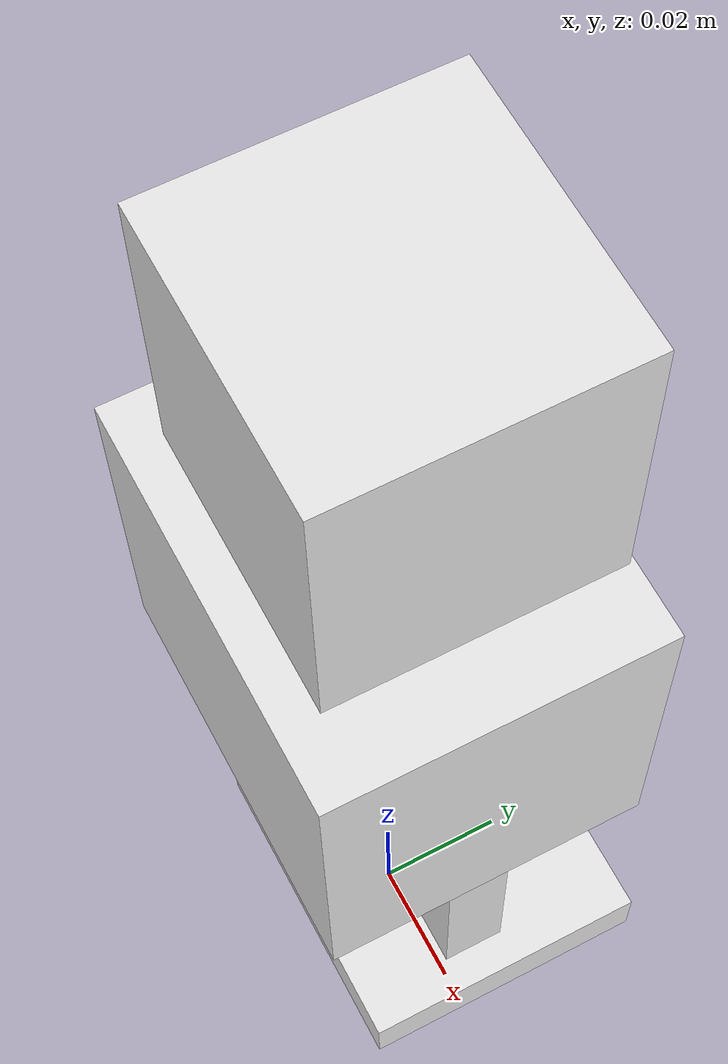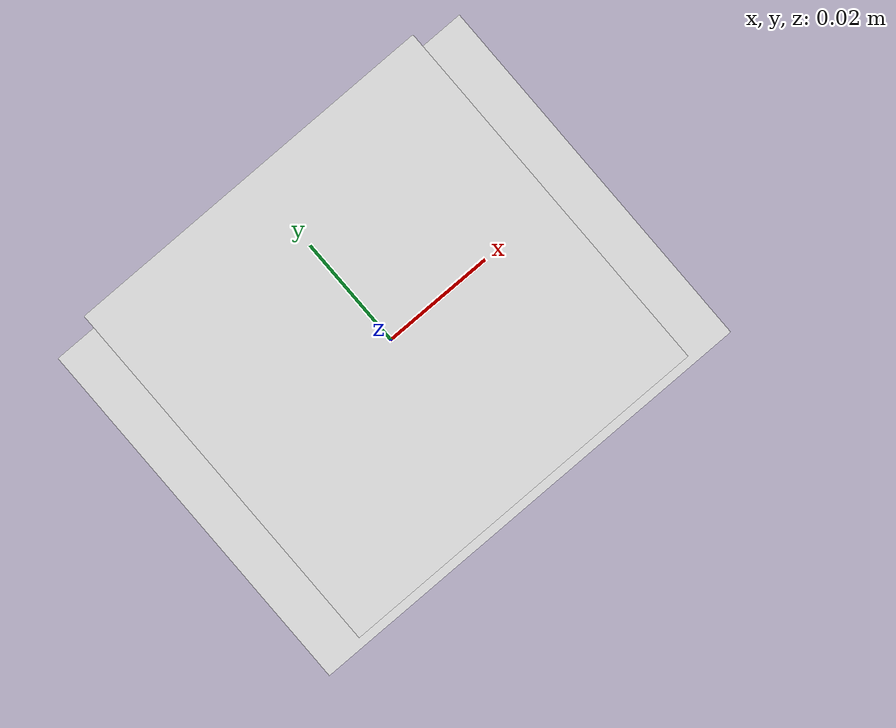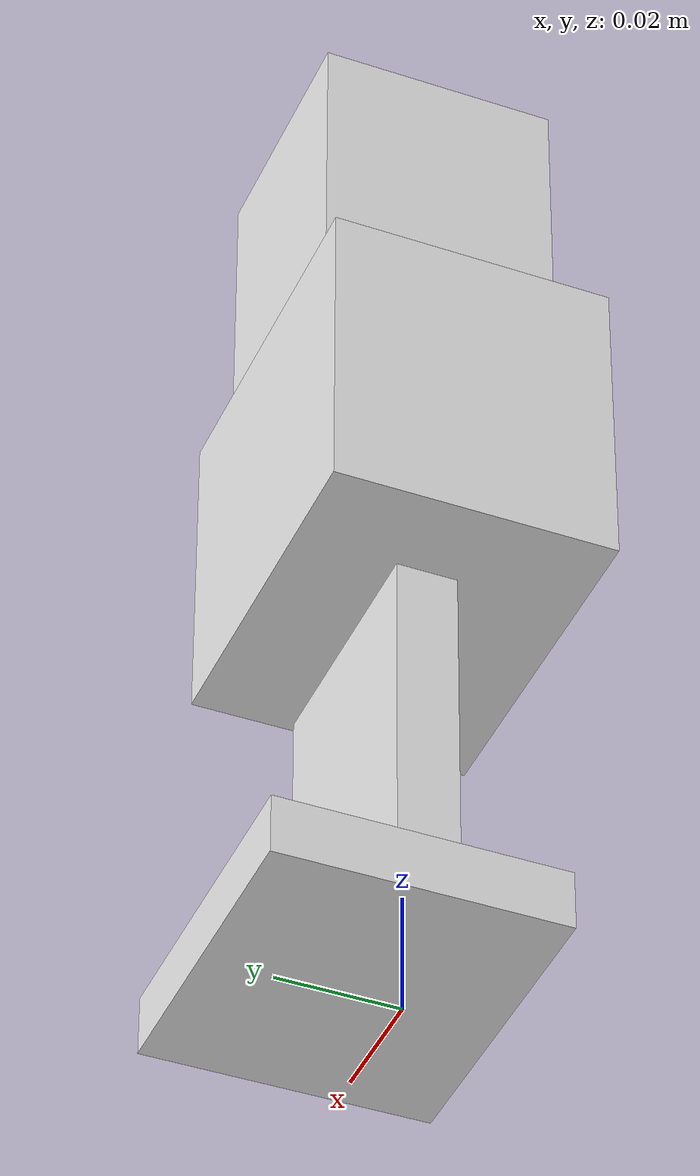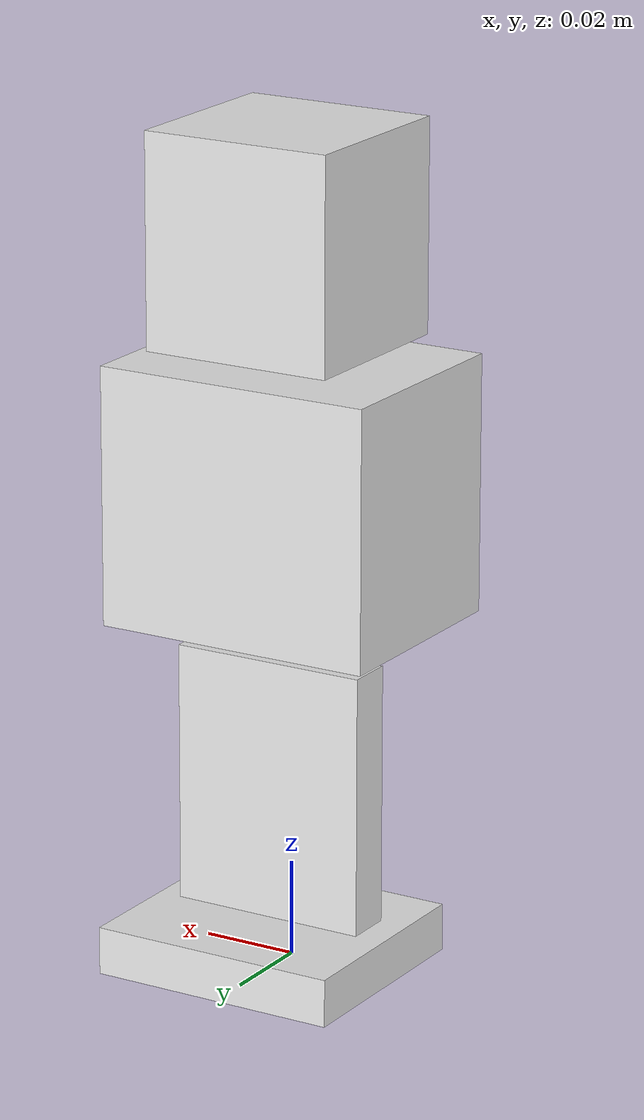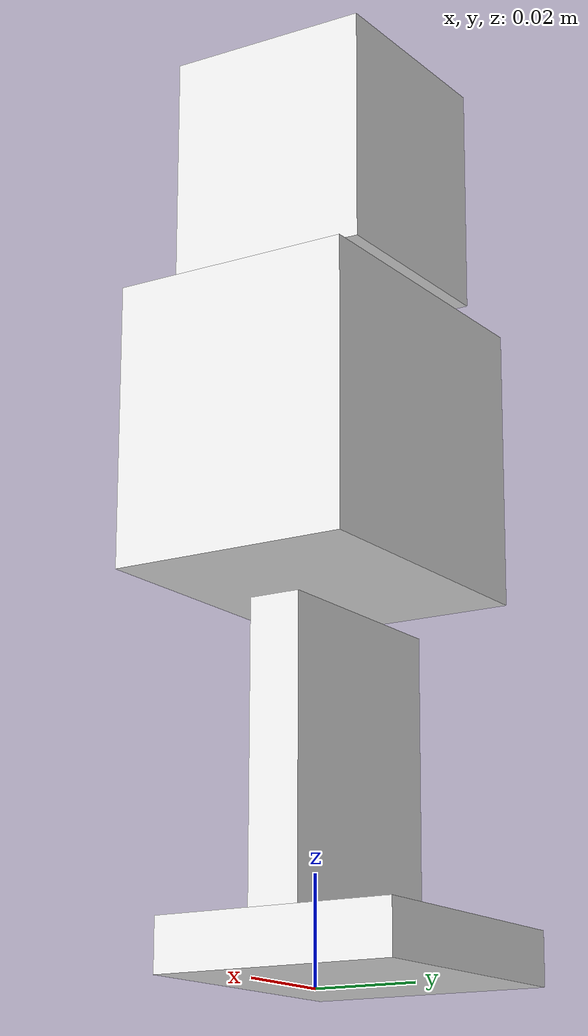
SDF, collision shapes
<?xml version='1.0'?>

<sdf version='1.5'>
  <model name='tinybot_no_arms'>
    <link name='link_0'>
      <pose>0 0 0.091  0 0 0</pose>
      <inertial>
        <pose>0 0.007 0  0 0 0</pose>
        <mass>0.1</mass>
        <inertia>
          <ixx>0.0002930416666666666</ixx>
          <ixy>0</ixy>
          <iyy>0.00029924166666666664</iyy>
          <ixz>0</ixz>
          <izz>6.421666666666666e-05</izz>
          <iyz>0</iyz>
        </inertia>
      </inertial>
      <visual name='visual'>
        <geometry>
          <mesh>
            <uri>model://tinybot_no_arms/meshes/tinybot.dae</uri>
          </mesh>
        </geometry>
        <material>
          <script>
            <uri>file://media/materials/scripts/gazebo.material</uri>
            <name>Gazebo/White</name>
          </script>
        </material>
      </visual>
      <collision name='head_collision'>
        <pose>0 0.001522 0.060318 0 -0 0</pose>
        <laser_retro>0</laser_retro>
        <max_contacts>10</max_contacts>
        <geometry>
          <box>
            <size>0.040384 0.039469 0.043901</size>
          </box>
        </geometry>
        <surface>
          <friction>
            <ode>
              <mu>1</mu>
              <mu2>1</mu2>
              <fdir1>0 0 0</fdir1>
              <slip1>0</slip1>
              <slip2>0</slip2>
            </ode>
          </friction>
          <bounce>
            <restitution_coefficient>0</restitution_coefficient>
            <threshold>1e+06</threshold>
          </bounce>
          <contact>
            <ode>
              <kp>1e+12</kp>
              <kd>1</kd>
              <max_vel>0.01</max_vel>
              <min_depth>0.001</min_depth>
            </ode>
            <bullet>
              <split_impulse>1</split_impulse>
              <split_impulse_penetration_threshold>-0.01</split_impulse_penetration_threshold>
              <kp>1e+12</kp>
              <kd>1</kd>
            </bullet>
          </contact>
        </surface>
      </collision>
      <collision name='torso_collision'>
        <pose>0 0 0.007827 0 -0 0</pose>
        <laser_retro>0</laser_retro>
        <max_contacts>10</max_contacts>
        <geometry>
          <box>
            <size>0.059167 0.046744 0.053482</size>
          </box>
        </geometry>
        <surface>
          <friction>
            <ode>
              <mu>1</mu>
              <mu2>1</mu2>
              <fdir1>0 0 0</fdir1>
              <slip1>0</slip1>
              <slip2>0</slip2>
            </ode>
          </friction>
          <bounce>
            <restitution_coefficient>0</restitution_coefficient>
            <threshold>1e+06</threshold>
          </bounce>
          <contact>
            <ode>
              <kp>1e+12</kp>
              <kd>1</kd>
              <max_vel>0.01</max_vel>
              <min_depth>0.001</min_depth>
            </ode>
            <bullet>
              <split_impulse>1</split_impulse>
              <split_impulse_penetration_threshold>-0.01</split_impulse_penetration_threshold>
              <kp>1e+12</kp>
              <kd>1</kd>
            </bullet>
          </contact>
        </surface>
      </collision>
      <collision name='legs_collision'>
        <pose>0 0.004553 -0.052517 0 -0 0</pose>
        <laser_retro>0</laser_retro>
        <max_contacts>10</max_contacts>
        <geometry>
          <box>
            <size>0.04151 0.009926 0.054264</size>
          </box>
        </geometry>
        <surface>
          <friction>
            <ode>
              <mu>1</mu>
              <mu2>1</mu2>
              <fdir1>0 0 0</fdir1>
              <slip1>0</slip1>
              <slip2>0</slip2>
            </ode>
          </friction>
          <bounce>
            <restitution_coefficient>0</restitution_coefficient>
            <threshold>1e+06</threshold>
          </bounce>
          <contact>
            <ode>
              <kp>1e+12</kp>
              <kd>1</kd>
              <max_vel>0.01</max_vel>
              <min_depth>0.001</min_depth>
            </ode>
            <bullet>
              <split_impulse>1</split_impulse>
              <split_impulse_penetration_threshold>-0.01</split_impulse_penetration_threshold>
              <kp>1e+12</kp>
              <kd>1</kd>
            </bullet>
          </contact>
        </surface>
      </collision>
      <collision name='feet_collision'>
        <pose>0 0.00772 -0.085129 0 -0 0</pose>
        <laser_retro>0</laser_retro>
        <max_contacts>10</max_contacts>
        <geometry>
          <box>
            <size>0.052682 0.046744 0.009924</size>
          </box>
        </geometry>
        <surface>
          <friction>
            <ode>
              <mu>1</mu>
              <mu2>1</mu2>
              <fdir1>0 0 0</fdir1>
              <slip1>0</slip1>
              <slip2>0</slip2>
            </ode>
          </friction>
          <bounce>
            <restitution_coefficient>0</restitution_coefficient>
            <threshold>1e+06</threshold>
          </bounce>
          <contact>
            <ode>
              <kp>1e+12</kp>
              <kd>1</kd>
              <max_vel>0.01</max_vel>
              <min_depth>0.001</min_depth>
            </ode>
            <bullet>
              <split_impulse>1</split_impulse>
              <split_impulse_penetration_threshold>-0.01</split_impulse_penetration_threshold>
              <kp>1e+12</kp>
              <kd>1</kd>
            </bullet>
          </contact>
        </surface>
      </collision>
    </link>
    <allow_auto_disable>1</allow_auto_disable>
  </model>
</sdf>
